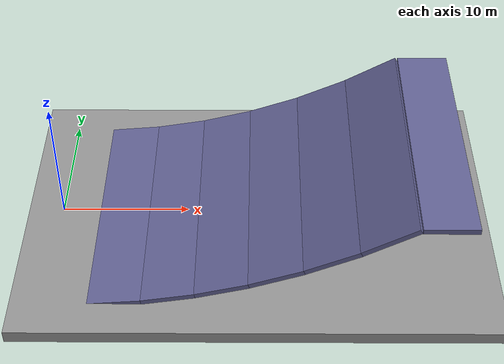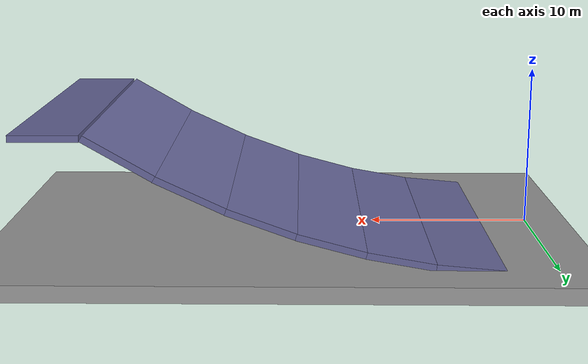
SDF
<?xml version="1.0" ?>
<sdf version="1.9">
  <world name="Seongdong_gu">
    <physics name="1ms" type="ignored">
      <dart>
        <collision_detector>bullet</collision_detector>
      </dart>
    </physics>
    <plugin filename="gz-sim-physics-system" name="gz::sim::systems::Physics"/>
    <plugin filename="gz-sim-user-commands-system"
            name="gz::sim::systems::UserCommands"/>
    <plugin filename="gz-sim-scene-broadcaster-system"
            name="gz::sim::systems::SceneBroadcaster"/>
    <plugin filename="gz-sim-sensors-system" name="gz::sim::systems::Sensors">
      <render_engine>ogre2</render_engine>
    </plugin>
    <plugin filename="gz-sim-imu-system" name="gz::sim::systems::Imu"/>
    <plugin filename="gz-sim-forcetorque-system"
            name="gz::sim::systems::ForceTorque"/>
    <plugin filename="gz-sim-contact-system" name="gz::sim::systems::Contact"/>
    <light type="directional" name="sun">
      <cast_shadows>true</cast_shadows>
      <pose>0 0 10 0 0 0</pose>
      <diffuse>0.8 0.8 0.8 1</diffuse>
      <specular>0.2 0.2 0.2 1</specular>
      <direction>-0.5 0.1 -0.9</direction>
    </light>
    <model name="ground">
      <static>true</static>
      <pose>0 0 -0.5 0 0 0</pose>
      <link name="link">
        <collision name="collision">
          <geometry><box><size>300 60 1</size></box></geometry>
          <surface><friction><ode><mu>1.0</mu><mu2>1.0</mu2></ode></friction></surface>
        </collision>
        <visual name="visual">
          <geometry><box><size>300 60 1</size></box></geometry>
          <material><ambient>0.5 0.5 0.5 1</ambient><diffuse>0.6 0.6 0.6 1</diffuse></material>
        </visual>
      </link>
    </model>
    <model name="ramp5">
      <static>true</static>
      <pose>4.982568851450468 0 -0.024261612566501112 0 -0.08726646259971647 0</pose>
      <link name="link">
        <collision name="collision">
          <geometry><box><size>4.015279350173389 20.0 0.4</size></box></geometry>
          <surface><friction><ode><mu>1.0</mu><mu2>1.0</mu2></ode></friction></surface>
        </collision>
        <visual name="visual">
          <geometry><box><size>4.015279350173389 20.0 0.4</size></box></geometry>
          <material><ambient>0.3 0.3 0.4 1</ambient><diffuse>0.4 0.4 0.6 1</diffuse></material>
        </visual>
      </link>
    </model>
    <model name="ramp10">
      <static>true</static>
      <pose>8.965270364466614 0 0.5056470649181843 0 -0.17453292519943295 0</pose>
      <link name="link">
        <collision name="collision">
          <geometry><box><size>4.0617064475429805 20.0 0.4</size></box></geometry>
          <surface><friction><ode><mu>1.0</mu><mu2>1.0</mu2></ode></friction></surface>
        </collision>
        <visual name="visual">
          <geometry><box><size>4.0617064475429805 20.0 0.4</size></box></geometry>
          <material><ambient>0.3 0.3 0.4 1</ambient><diffuse>0.4 0.4 0.6 1</diffuse></material>
        </visual>
      </link>
    </model>
    <model name="ramp15">
      <static>true</static>
      <pose>12.948236190979497 0 1.3979757965419877 0 -0.2617993877991494 0</pose>
      <link name="link">
        <collision name="collision">
          <geometry><box><size>4.141104721640332 20.0 0.4</size></box></geometry>
          <surface><friction><ode><mu>1.0</mu><mu2>1.0</mu2></ode></friction></surface>
        </collision>
        <visual name="visual">
          <geometry><box><size>4.141104721640332 20.0 0.4</size></box></geometry>
          <material><ambient>0.3 0.3 0.4 1</ambient><diffuse>0.4 0.4 0.6 1</diffuse></material>
        </visual>
      </link>
    </model>
    <model name="ramp20">
      <static>true</static>
      <pose>16.931595971334865 0 2.6670612910372697 0 -0.3490658503988659 0</pose>
      <link name="link">
        <collision name="collision">
          <geometry><box><size>4.256711089903648 20.0 0.4</size></box></geometry>
          <surface><friction><ode><mu>1.0</mu><mu2>1.0</mu2></ode></friction></surface>
        </collision>
        <visual name="visual">
          <geometry><box><size>4.256711089903648 20.0 0.4</size></box></geometry>
          <material><ambient>0.3 0.3 0.4 1</ambient><diffuse>0.4 0.4 0.6 1</diffuse></material>
        </visual>
      </link>
    </model>
    <model name="ramp25">
      <static>true</static>
      <pose>20.91547634765186 0 4.334294042629523 0 -0.4363323129985824 0</pose>
      <link name="link">
        <collision name="collision">
          <geometry><box><size>4.413511675849967 20.0 0.4</size></box></geometry>
          <surface><friction><ode><mu>1.0</mu><mu2>1.0</mu2></ode></friction></surface>
        </collision>
        <visual name="visual">
          <geometry><box><size>4.413511675849967 20.0 0.4</size></box></geometry>
          <material><ambient>0.3 0.3 0.4 1</ambient><diffuse>0.4 0.4 0.6 1</diffuse></material>
        </visual>
      </link>
    </model>
    <model name="ramp30">
      <static>true</static>
      <pose>24.9 0 6.429666373969214 0 -0.5235987755982988 0</pose>
      <link name="link">
        <collision name="collision">
          <geometry><box><size>4.618802153517006 20.0 0.4</size></box></geometry>
          <surface><friction><ode><mu>1.0</mu><mu2>1.0</mu2></ode></friction></surface>
        </collision>
        <visual name="visual">
          <geometry><box><size>4.618802153517006 20.0 0.4</size></box></geometry>
          <material><ambient>0.3 0.3 0.4 1</ambient><diffuse>0.4 0.4 0.6 1</diffuse></material>
        </visual>
      </link>
    </model>
    <model name="summit">
      <static>true</static>
      <pose>29.0 0 7.557571993105353 0 0 0</pose>
      <link name="link">
        <collision name="collision">
          <geometry><box><size>4.0 20.0 0.4</size></box></geometry>
          <surface><friction><ode><mu>1.0</mu><mu2>1.0</mu2></ode></friction></surface>
        </collision>
        <visual name="visual">
          <geometry><box><size>4.0 20.0 0.4</size></box></geometry>
          <material><ambient>0.3 0.3 0.4 1</ambient><diffuse>0.4 0.4 0.6 1</diffuse></material>
        </visual>
      </link>
    </model>
  </world>
</sdf>
